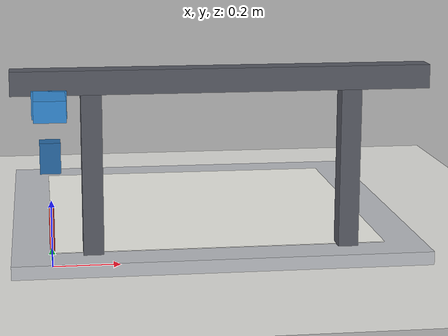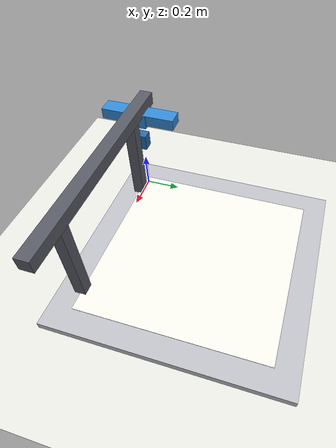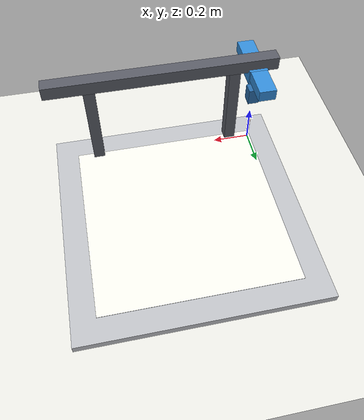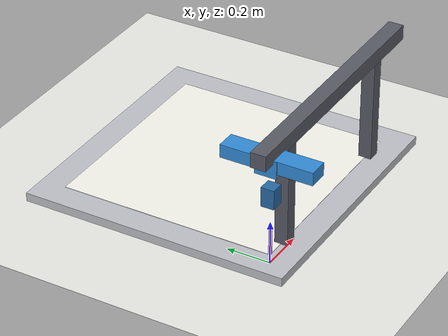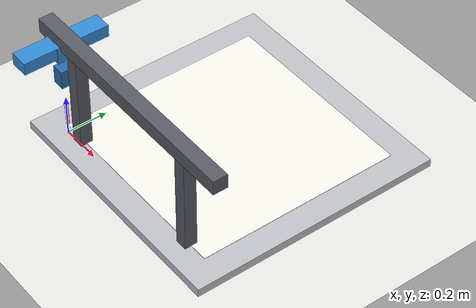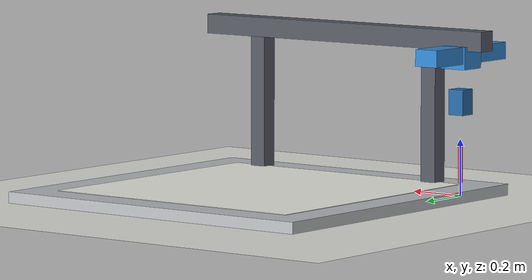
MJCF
<mujoco model="plotter3axis_demo">
  <!-- 由 scene.spec.json 组装（mujoco_build.py）；关节 q=0 = 作者位姿，Z: 0=落笔 0.011=抬笔 -->
  <option timestep="0.008333" gravity="0 0 -9.81"/>
  <compiler angle="radian" autolimits="true"/>
  <default>
    <joint armature="0.01" frictionloss="0.1"/>
    <geom friction="0.8 0.02 0.001" condim="3"/>
  </default>
  <worldbody>
    <geom name="floor" type="plane" size="10 10 0.1" rgba="0.92 0.92 0.9 1"/>
    <body name="gantry_base" pos="0 0 0">
      <!-- 工作区布局：spec pose = 笔尖行程原点（左下角），纸张/底板以行程中心摆放，
           笔尖扫掠 [pose, pose+travel] 恰好铺满纸面（USD 侧同样存在纸张偏置在
           根原点的布局缺陷，见 devlog 2026-09-07(8)；MJCF 侧已修正） -->
      <geom name="base_plate" type="box" size="0.62 0.62 0.02"
            pos="0.5 0.5 0.02" rgba="0.75 0.76 0.78 1"/>
      <geom name="paper" type="box" size="0.5 0.5 0.001"
            pos="0.5 0.5 0.041" rgba="0.97 0.97 0.94 1"/>
      <!-- 立柱/导轨为结构装饰件：与滑座在作者位姿天然互穿（滑座"骑"在导轨上），
           关闭其碰撞以免顶死关节；功能接触（笔尖↔纸面、整体↔地面）不受影响 -->
      <geom name="column_l" type="box" size="0.03 0.03 0.275"
            pos="0.12 0 0.275"
            contype="0" conaffinity="0" rgba="0.35 0.36 0.4 1"/>
      <geom name="column_r" type="box" size="0.03 0.03 0.275"
            pos="0.88 0 0.275"
            contype="0" conaffinity="0" rgba="0.35 0.36 0.4 1"/>
      <geom name="x_rail" type="box" size="0.61 0.035 0.035"
            pos="0.5 0 0.55"
            contype="0" conaffinity="0" rgba="0.35 0.36 0.4 1"/>
      <body name="x_carriage" pos="0 0 0.5">
        <joint name="joint_x" type="slide" axis="1 0 0" range="0 1"
               damping="250"/>
        <geom name="saddle" type="box" size="0.045 0.21 0.03" mass="4"
              contype="0" conaffinity="0" rgba="0.2 0.55 0.85 1"/>
        <body name="y_carriage" pos="0 0 -0.01">
          <joint name="joint_y" type="slide" axis="0 1 0" range="0 1"
                 damping="250"/>
          <geom name="head" type="box" size="0.05 0.05 0.04" mass="3"
                contype="0" conaffinity="0" rgba="0.2 0.55 0.85 1"/>
          <body name="z_carriage" pos="0 0 -0.313">
            <joint name="joint_z" type="slide" axis="0 0 1" range="0 0.011"
                   damping="80"/>
            <geom name="slider" type="box" size="0.03 0.03 0.045" mass="0.4"
                  pos="0 0 0.155" contype="0" conaffinity="0" rgba="0.16 0.42 0.66 1"/>
            <!-- 笔向下悬伸：q=0 时笔尖球面触纸（胶囊最低面 = 轴线端点 + 半径，轴长已补半径），
                 抬笔 = +Z 行程；伺服压纸的力平衡稳态由接触判据语义覆盖（csk 文档 §7.1） -->
            <geom name="pen" type="capsule" fromto="0 0 -0.1275 0 0 0"
                  size="0.0075" mass="0.02" rgba="0.85 0.2 0.2 1"/>
          </body>
        </body>
      </body>
    </body>
  </worldbody>
  <actuator>
    <!-- 位置伺服：ctrl = 关节目标（米），运行时按 axisSpeed=0.4 m/s 速率限制写入 -->
    <position name="drive_x" joint="joint_x" kp="6000"
              ctrlrange="0 1"/>
    <position name="drive_y" joint="joint_y" kp="6000"
              ctrlrange="0 1"/>
    <position name="drive_z" joint="joint_z" kp="4000"
              ctrlrange="0 0.011"/>
  </actuator>
</mujoco>
